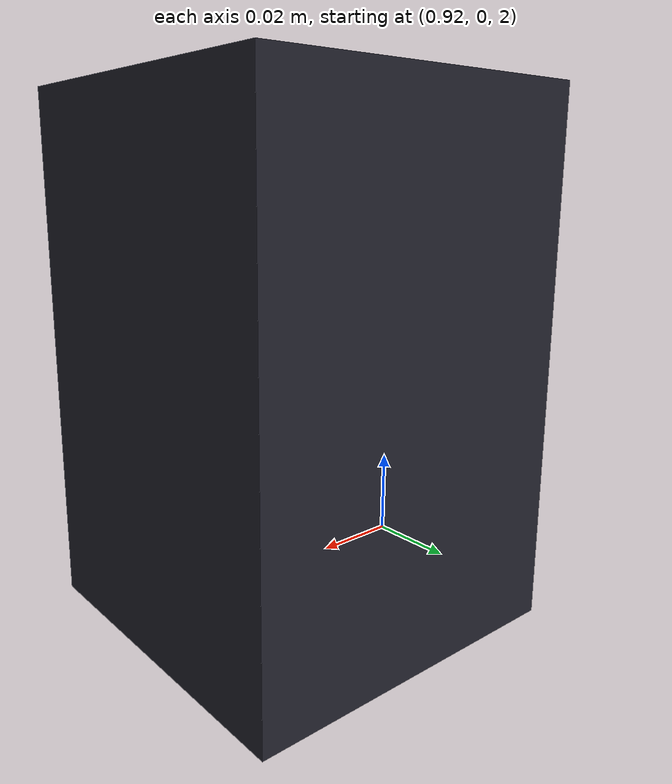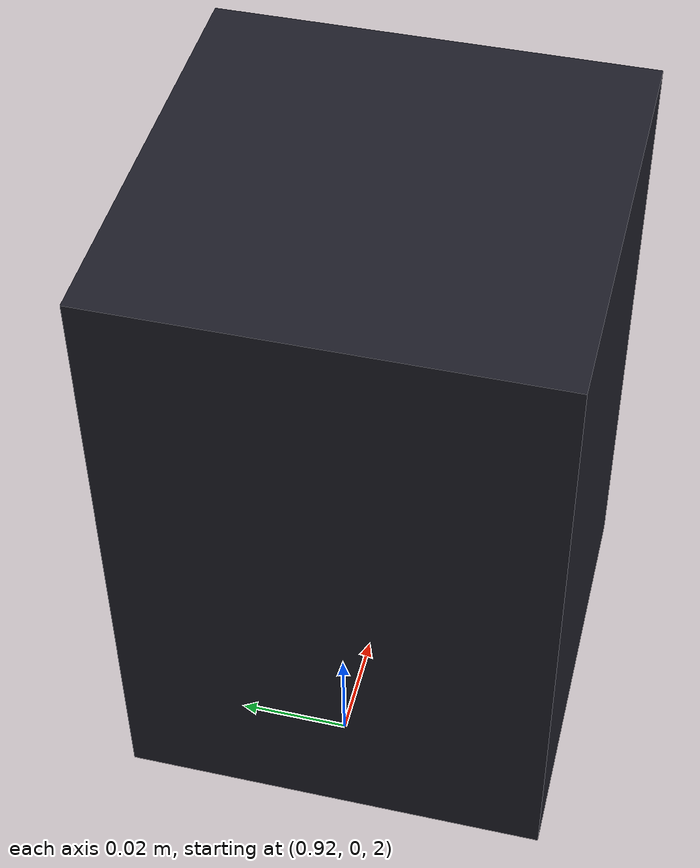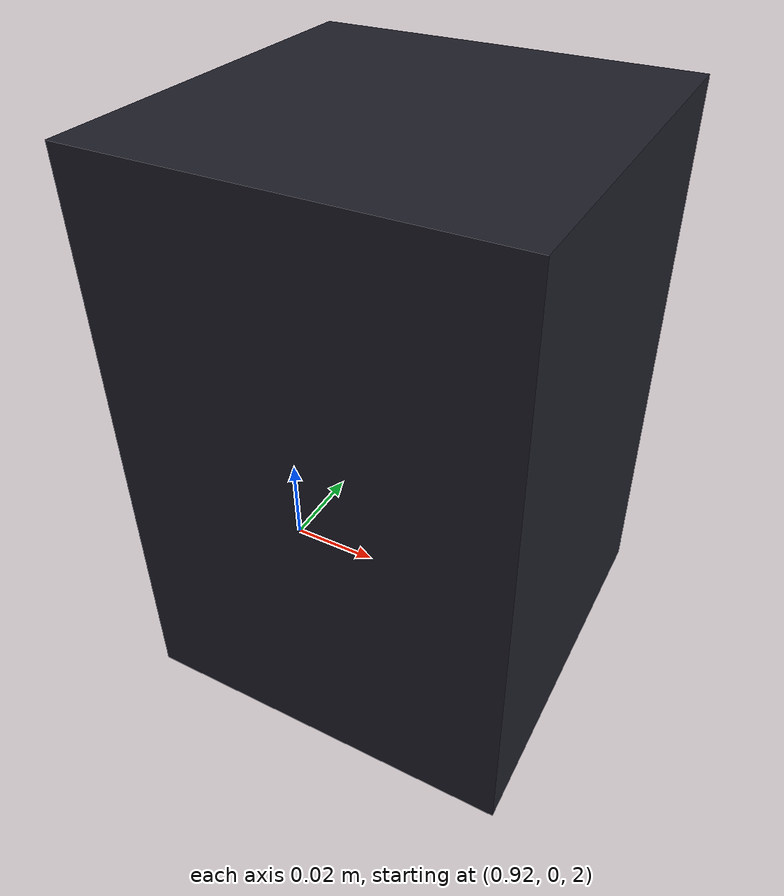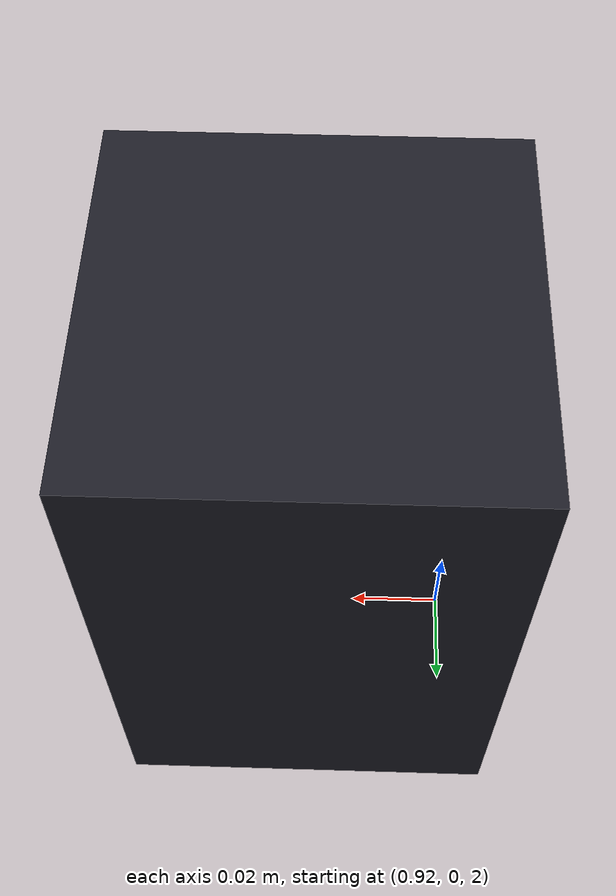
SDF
<?xml version="1.0" ?>
<sdf version="1.6">
  <world name="ur10_gantry_only_scene">
    <light name="sun" type="directional">
      <cast_shadows>true</cast_shadows>
      <pose>0 0 10 0 0 0</pose>
      <diffuse>0.8 0.8 0.8 1</diffuse>
      <specular>0.2 0.2 0.2 1</specular>
      <attenuation>
        <range>1000</range>
        <constant>0.9</constant>
        <linear>0.01</linear>
        <quadratic>0.001</quadratic>
      </attenuation>
      <direction>-0.5 0.1 -0.9</direction>
    </light>

    <model name="ground_plane">
      <static>true</static>
      <link name="link">
        <collision name="collision">
          <geometry>
            <plane>
              <normal>0 0 1</normal>
              <size>100 100</size>
            </plane>
          </geometry>
          <surface>
            <friction>
              <ode>
                <mu>100</mu>
                <mu2>50</mu2>
              </ode>
            </friction>
          </surface>
        </collision>
        <visual name="visual">
          <cast_shadows>false</cast_shadows>
          <geometry>
            <plane>
              <normal>0 0 1</normal>
              <size>100 100</size>
            </plane>
          </geometry>
          <material>
            <script>
              <uri>file://media/materials/scripts/gazebo.material</uri>
              <name>Gazebo/Grey</name>
            </script>
          </material>
        </visual>
      </link>
    </model>

    <scene>
      <ambient>0.7 0.7 0.7 1.0</ambient>
      <background>0.92 0.94 0.97 1.0</background>
      <shadows>true</shadows>
    </scene>

    <physics type="ode">
      <real_time_update_rate>1000</real_time_update_rate>
      <max_step_size>0.001</max_step_size>
      <real_time_factor>1.0</real_time_factor>
    </physics>

    <model name="gantry_depth_camera_model">
      <static>true</static>
      <pose>0.95 0.0 2.05 0 1.57079632679 3.14159265359</pose>
      <link name="gantry_depth_camera_link">
        <visual name="camera_body_visual">
          <geometry>
            <box>
              <size>0.12 0.08 0.08</size>
            </box>
          </geometry>
          <material>
            <ambient>0.12 0.12 0.16 1.0</ambient>
            <diffuse>0.12 0.12 0.16 1.0</diffuse>
          </material>
        </visual>
        <sensor type="depth" name="gantry_depth_sensor">
          <always_on>true</always_on>
          <update_rate>20.0</update_rate>
          <visualize>true</visualize>
          <camera>
            <horizontal_fov>1.25</horizontal_fov>
            <image>
              <width>640</width>
              <height>480</height>
              <format>B8G8R8</format>
            </image>
            <depth_camera/>
            <clip>
              <near>0.10</near>
              <far>5.0</far>
            </clip>
          </camera>
          <plugin name="gantry_depth_camera_controller" filename="libgazebo_ros_camera.so">
            <ros>
              <namespace>/gantry_depth_camera</namespace>
              <remapping>gantry_depth/image_raw:=depth/image_raw</remapping>
              <remapping>gantry_depth/depth/image_raw:=depth/image_raw</remapping>
              <remapping>gantry_depth/camera_info:=camera_info</remapping>
              <remapping>gantry_depth/depth/camera_info:=depth/camera_info</remapping>
              <remapping>gantry_depth/points:=points</remapping>
            </ros>
            <camera_name>gantry_depth</camera_name>
            <frame_name>gantry_depth_camera_link</frame_name>
            <hack_baseline>0.0</hack_baseline>
            <min_depth>0.10</min_depth>
            <max_depth>5.0</max_depth>
          </plugin>
        </sensor>
      </link>
    </model>
  </world>
</sdf>
